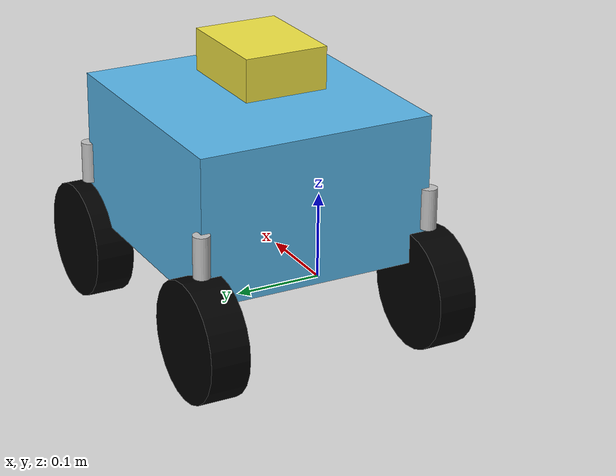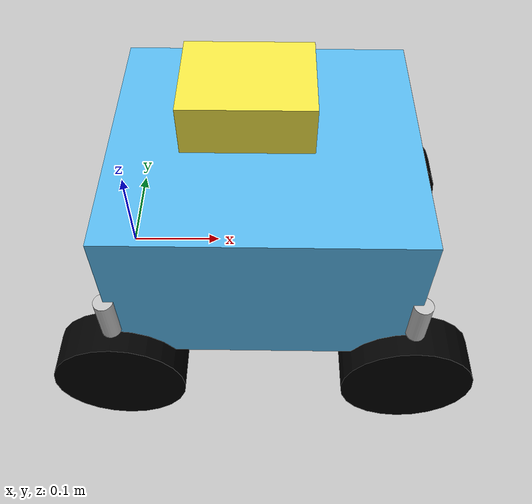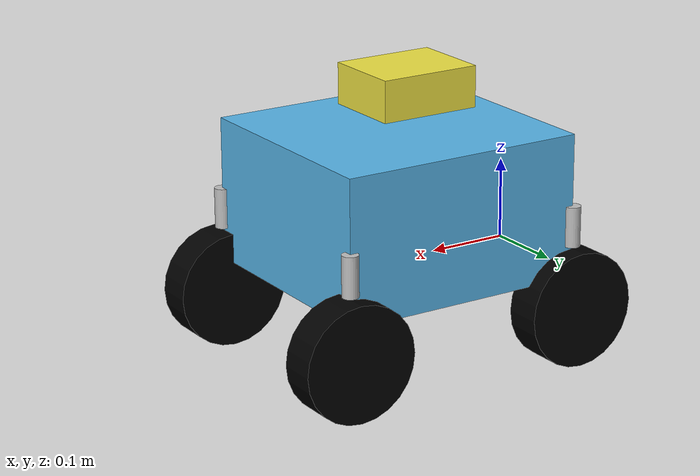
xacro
<?xml version="1.0"?>
<robot xmlns:xacro="http://ros.org/wiki/xacro" name="car">
    <xacro:arg name="wheel_diameter" default="0.14224"/>

    <xacro:property name="wheel_radius" value="${$(arg wheel_diameter)/2}"/>
    <xacro:property name="wheel_width" value="0.047"/>
    <xacro:property name="wheel_friction" value="0.01"/>
    <xacro:property name="wheelbase_length" value="0.311"/>
    <xacro:property name="front_wheelbase_width" value="0.289"/>
    <xacro:property name="rear_wheelbase_width" value="0.289"/>
    <xacro:property name="wheel_mass" value="0.1"/>
    <xacro:property name="total_mass" value = "3.0"/>
    <xacro:property name="shock_travel" value = "0.09"/>
    <xacro:property name="chassis_height" value = "0.178"/>
    <xacro:property name="chassis_elevation" value = "-0.01"/>
    <xacro:property name="chassis_mass" value = "${total_mass-4*wheel_mass}"/>

    <xacro:macro name="cylinder_inertia" params="m r h">
            <inertia  ixx="${m*(3*r*r+h*h)/12}" ixy = "0" ixz = "0"
                        iyy="${m*(3*r*r+h*h)/12}" iyz = "0"
                        izz="${m*r*r/2}" />
    </xacro:macro>

    <xacro:macro name="box_inertia" params="m x y z">
            <inertia  ixx="${m*(y*y+z*z)/12}" ixy = "0" ixz = "0"
                        iyy="${m*(x*x+z*z)/12}" iyz = "0"
                        izz="${m*(x*x+z*z)/12}" />
    </xacro:macro>

    <xacro:macro name="sphere_inertia" params="m r">
            <inertia  ixx="${2*m*r*r/5}" ixy = "0" ixz = "0"
                        iyy="${2*m*r*r/5}" iyz = "0"
                        izz="${2*m*r*r/5}" />
    </xacro:macro>

    <xacro:macro name="cylinder_inertial" params="m r h">
        <inertial>
        <mass value="${m}"/>
        <xacro:cylinder_inertia m="${m}" r="${r}" h="${h}"/>
        </inertial>
    </xacro:macro>

    <link name="base_link"/>

    <link name="chassis_link">
        <visual>
        <geometry>
            <box size="${wheelbase_length} ${front_wheelbase_width} ${chassis_height}"/>
        </geometry>
        </visual>
        <collision>
        <geometry>
            <box size="${wheelbase_length} ${front_wheelbase_width} ${chassis_height}"/>
        </geometry>
        </collision>
        <inertial>
        <mass value="${chassis_mass}"/>
        <xacro:box_inertia m="${chassis_mass}" x="${wheelbase_length}" y="${front_wheelbase_width}" z="${chassis_height}"/>
        </inertial>
    </link>

    <link name="back_left_wheel">
        <visual>
        <geometry>
            <cylinder length="${wheel_width}" radius="${wheel_radius}"/>
        </geometry>
        <material name="black">
            <color rgba="0 0 0 1"/>
        </material>
        </visual>
        <collision>
        <geometry>
            <cylinder length="${wheel_width}" radius="${wheel_radius}"/>
        </geometry>
        </collision>

        <xacro:cylinder_inertial m="${wheel_mass}" r="${wheel_radius}" h="${wheel_width}"/>
    </link>

    <link name="laser_scanner_link">
        <collision>
        <origin xyz="0 0 0" rpy="0 0 0"/>
        <geometry>
            <box size=".127 0.1016 0.0508"/>
        </geometry>
        </collision>
        <visual>
        <origin xyz="0 0 0" rpy="0 0 0"/>
        <geometry>
            <box size=".127 0.1016 0.0508"/>
        </geometry>
        </visual>
        <inertial>
        <mass value="1e-5"/>
        <origin xyz="0 0 0" rpy="0 0 0"/>
        <inertia ixx="1e-6" ixy="0" ixz="0" iyy="1e-6" iyz="0" izz="1e-6"/>
        </inertial>
    </link>

    <gazebo reference="laser_scanner_link">
        <sensor type="ray" name="laser_scanner">
        <always_on>true</always_on>
        <update_rate>3</update_rate>
        <ray>
        <scan>
            <horizontal>
            <samples>360</samples>
            <resolution>1</resolution>
            <min_angle>${-pi}</min_angle>
            <max_angle>${pi}</max_angle>
            </horizontal>
        </scan>
        <range>
            <min>0.30</min>
            <max>25.0</max>
            <resolution>0.1</resolution>
        </range>
        </ray>
        <plugin name="scan" filename="libgazebo_ros_ray_sensor.so">
            <ros>
            <remapping>~/out:=scan</remapping>
            </ros>
            <output_type>sensor_msgs/LaserScan</output_type>
            <frame_name>laser_scanner_link</frame_name>
        </plugin>
        </sensor>
    </gazebo>

    <link name="back_right_wheel">
        <visual>
        <geometry>
            <cylinder length="${wheel_width}" radius="${wheel_radius}"/>
        </geometry>
        <material name="black">
            <color rgba="0 0 0 1"/>
        </material>
        </visual>
        <collision>
        <geometry>
            <cylinder length="${wheel_width}" radius="${wheel_radius}"/>
        </geometry>
        </collision>
        <xacro:cylinder_inertial m="${wheel_mass}" r="${wheel_radius}" h="${wheel_width}"/>
    </link>

    <link name="front_left_wheel_steer">
        <visual>
        <geometry>
            <cylinder length="0.01" radius="0.01"/>
        </geometry>
        <material name="black">
            <color rgba="0 0 0 1"/>
        </material>
        </visual>
        <collision>
        <geometry>
            <cylinder length="0.01" radius="0.01"/>
        </geometry>
        </collision>
        <inertial>
        <mass value="0.1"/>
        <inertia ixx="5.1458e-5" iyy="5.1458e-5" izz="6.125e-5"
                ixy="0" ixz="0" iyz="0"/>
        </inertial>
    </link>
        <link name="front_left_wheel">
        <visual>
        <geometry>
            <cylinder length="${wheel_width}" radius="${wheel_radius}"/>
        </geometry>
        <material name="black">
            <color rgba="0 0 0 1"/>
        </material>
        </visual>
        <collision>
        <geometry>
            <cylinder length="${wheel_width}" radius="${wheel_radius}"/>
        </geometry>
        </collision>
        <xacro:cylinder_inertial m="${wheel_mass}" r="${wheel_radius}" h="${wheel_width}"/>
    </link>

    <link name="front_right_wheel_steer">
        <visual>
        <geometry>
            <cylinder length="0.01" radius="0.01"/>
        </geometry>
        <material name="black">
            <color rgba="0 0 0 1"/>
        </material>
        </visual>
        <collision>
        <geometry>
            <cylinder length="0.01" radius="0.01"/>
        </geometry>
        </collision>
        <inertial>
        <mass value="0.1"/>
        <inertia ixx="5.1458e-5" iyy="5.1458e-5" izz="6.125e-5"
                ixy="0" ixz="0" iyz="0"/>
        </inertial>
    </link>

    <link name="front_right_wheel">
        <visual>
        <geometry>
            <cylinder length="${wheel_width}" radius="${wheel_radius}"/>
        </geometry>
        <material name="black">
            <color rgba="0 0 0 1"/>
        </material>
        </visual>
        <collision>
        <geometry>
            <cylinder length="${wheel_width}" radius="${wheel_radius}"/>
        </geometry>
        </collision>
        <xacro:cylinder_inertial m="${wheel_mass}" r="${wheel_radius}" h="${wheel_width}"/>
    </link>

    <link name="back_left_wheel_shock">
        <visual>
        <origin xyz="0 0 0.1" rpy="0 0 0"/>
        <geometry>
            <cylinder length="0.05" radius="0.01"/>
        </geometry>
        <material name="silver">
            <color rgba="0.75 0.75 0.75 1"/>
        </material>
        </visual>
        <collision>
        <origin xyz="0 0 0.1" rpy="0 0 0"/>
        <geometry>
            <cylinder length="0.05" radius="0.01"/>
        </geometry>
        </collision>
        <inertial>
        <mass value="0.01"/>
        <inertia ixx="0.015" iyy="0.0375" izz="0.0375"
                ixy="0" ixz="0" iyz="0"/>
        </inertial>
    </link>

    <link name="back_right_wheel_shock">
        <visual>
        <origin xyz="0 0 0.1" rpy="0 0 0"/>
        <geometry>
        <cylinder length="0.05" radius="0.01"/>
        </geometry>
        <material name="silver">
        <color rgba="0.75 0.75 0.75 1"/>
        </material>
    </visual>
    <collision>
        <origin xyz="0 0 0.1" rpy="0 0 0"/>
        <geometry>
        <cylinder length="0.05" radius="0.01"/>
        </geometry>
    </collision>
    <inertial>
        <mass value="0.01"/>
        <inertia ixx="0.015" iyy="0.0375" izz="0.0375"
                ixy="0" ixz="0" iyz="0"/>
    </inertial>
    </link>

    <link name="front_left_wheel_shock">
        <visual>
        <origin xyz="0 0 0.1" rpy="0 0 0"/>
        <geometry>
            <cylinder length="0.05" radius="0.01"/>
        </geometry>
        <material name="silver">
            <color rgba="0.75 0.75 0.75 1"/>
        </material>
        </visual>
        <collision>
        <origin xyz="0 0 0.1" rpy="0 0 0"/>
        <geometry>
            <cylinder length="0.05" radius="0.01"/>
        </geometry>
        </collision>
        <inertial>
        <mass value="0.01"/>
        <inertia ixx="0.015" iyy="0.0375" izz="0.0375"
                ixy="0" ixz="0" iyz="0"/>
        </inertial>
    </link>

    <link name="front_right_wheel_shock">
        <visual>
        <origin xyz="0 0 0.1" rpy="0 0 0"/>
        <geometry>
            <cylinder length="0.05" radius="0.01"/>
        </geometry>
        <material name="silver">
            <color rgba="0.75 0.75 0.75 1"/>
        </material>
        </visual>
        <collision>
        <origin xyz="0 0 0.1" rpy="0 0 0"/>
        <geometry>
            <cylinder length="0.05" radius="0.01"/>
        </geometry>
        </collision>
        <inertial>
        <mass value="0.01"/>
        <inertia ixx="0.015" iyy="0.0375" izz="0.0375"
                ixy="0" ixz="0" iyz="0"/>
        </inertial>
    </link>

    <joint name="laser_scanner_joint" type="fixed">
        <origin rpy="0 0 0" xyz="0.1397 0 0.2159"/>
        <parent link="base_link"/>
        <child link="laser_scanner_link"/>
    </joint>

    <joint name="back_left_shock_joint" type="prismatic">
        <limit lower="0" upper="${shock_travel}" effort="100" velocity="100"/>
        <axis xyz="0 0 1"/>
        <parent link="base_link"/>
        <child link="back_left_wheel_shock"/>
        <origin rpy="0 0 0" xyz="0 ${rear_wheelbase_width/2}  ${-shock_travel/2}"/>
    </joint>

    <joint name="back_left_wheel_joint" type="continuous">
        <axis xyz="0 0 1"/>
        <parent link="back_left_wheel_shock"/>
        <child link="back_left_wheel"/>
        <origin rpy="${-pi/2} 0 0" xyz="0 0 0"/>
        <limit effort="10000" velocity="500" />
    </joint>

    <joint name="back_right_shock_joint" type="prismatic">
        <limit lower="0" upper="${shock_travel}" effort="100" velocity="100"/>
        <axis xyz="0 0 1"/>
        <parent link="base_link"/>
        <child link="back_right_wheel_shock"/>
        <origin rpy="0 0 0" xyz="0 ${-rear_wheelbase_width/2} ${-shock_travel/2}"/>
    </joint>

    <joint name="back_right_wheel_joint" type="continuous">
        <axis xyz="0 0 1"/>
        <parent link="back_right_wheel_shock"/>
        <child link="back_right_wheel"/>
        <origin rpy="${-pi/2} 0 0" xyz="0 0 0"/>
        <limit effort="10000" velocity="500" />
    </joint>

    <joint name="front_right_shock_joint" type="prismatic">
        <limit lower="0" upper="${shock_travel}" effort="100" velocity="100"/>
        <axis xyz="0 0 1"/>
        <parent link="base_link"/>
        <child link="front_right_wheel_shock"/>
        <origin rpy="0 0 0" xyz="${wheelbase_length} ${-front_wheelbase_width/2} ${-shock_travel/2}"/>
    </joint>

    <joint name="front_left_shock_joint" type="prismatic">
        <limit lower="0" upper="${shock_travel}" effort="100" velocity="100"/>
        <axis xyz="0 0 1"/>
        <parent link="base_link"/>
        <child link="front_left_wheel_shock"/>
        <origin rpy="0 0 0" xyz="${wheelbase_length} ${front_wheelbase_width/2}  ${-shock_travel/2}"/>
    </joint>

    <joint name="front_left_wheel_steer_joint" type="revolute">
        <limit lower="-1" upper="1" effort="1" velocity="5"/>
        <axis xyz="0 0 1"/>
        <parent link="front_left_wheel_shock"/>
        <child link="front_left_wheel_steer"/>
        <origin rpy="0 0 0" xyz="0 0 0"/>
    </joint>

    <joint name="front_left_wheel_joint" type="continuous">
        <axis xyz="0 0 1"/>
        <parent link="front_left_wheel_steer"/>
        <child link="front_left_wheel"/>
        <origin rpy="${-pi/2} 0 0" xyz="0 0 0"/>
    </joint>

    <joint name="front_right_wheel_steer_joint" type="revolute">
        <limit lower="-1" upper="1" effort="1" velocity="5"/>
        <axis xyz="0 0 1"/>
        <parent link="front_right_wheel_shock"/>
        <child link="front_right_wheel_steer"/>
        <origin rpy="0 0 0" xyz="0 0 0"/>
    </joint>

    <joint name="front_right_wheel_joint" type="continuous">
        <axis xyz="0 0 1"/>
        <parent link="front_right_wheel_steer"/>
        <child link="front_right_wheel"/>
        <origin rpy="${-pi/2} 0 0" xyz="0 0 0"/>
    </joint>

    <joint name="chassis_joint" type="fixed">
        <parent link="base_link"/>
        <child link="chassis_link"/>
        <origin rpy="0 0 0" xyz="${wheelbase_length/2} 0 ${chassis_height/2 + chassis_elevation}"/>
    </joint>

    <gazebo reference="front_left_wheel">
        <mu1>${wheel_friction}</mu1>
        <material>Gazebo/Black</material>
    </gazebo>
    <gazebo reference="front_right_wheel">
        <mu1>${wheel_friction}</mu1>
        <material>Gazebo/Black</material>
    </gazebo>
    <gazebo reference="back_left_wheel">
        <mu1>${wheel_friction}</mu1>
        <material>Gazebo/Green</material>
    </gazebo>
    <gazebo reference="back_right_wheel">
        <mu1>${wheel_friction}</mu1>
        <material>Gazebo/Green</material>
    </gazebo>

    <gazebo reference="base_link">
        <dampingFactor>0.00007</dampingFactor>
    </gazebo>
    <gazebo>
        <plugin name="car_gazebo_plugin" filename="libcar_gazebo_plugin.so">
        </plugin>
    </gazebo>
</robot>
